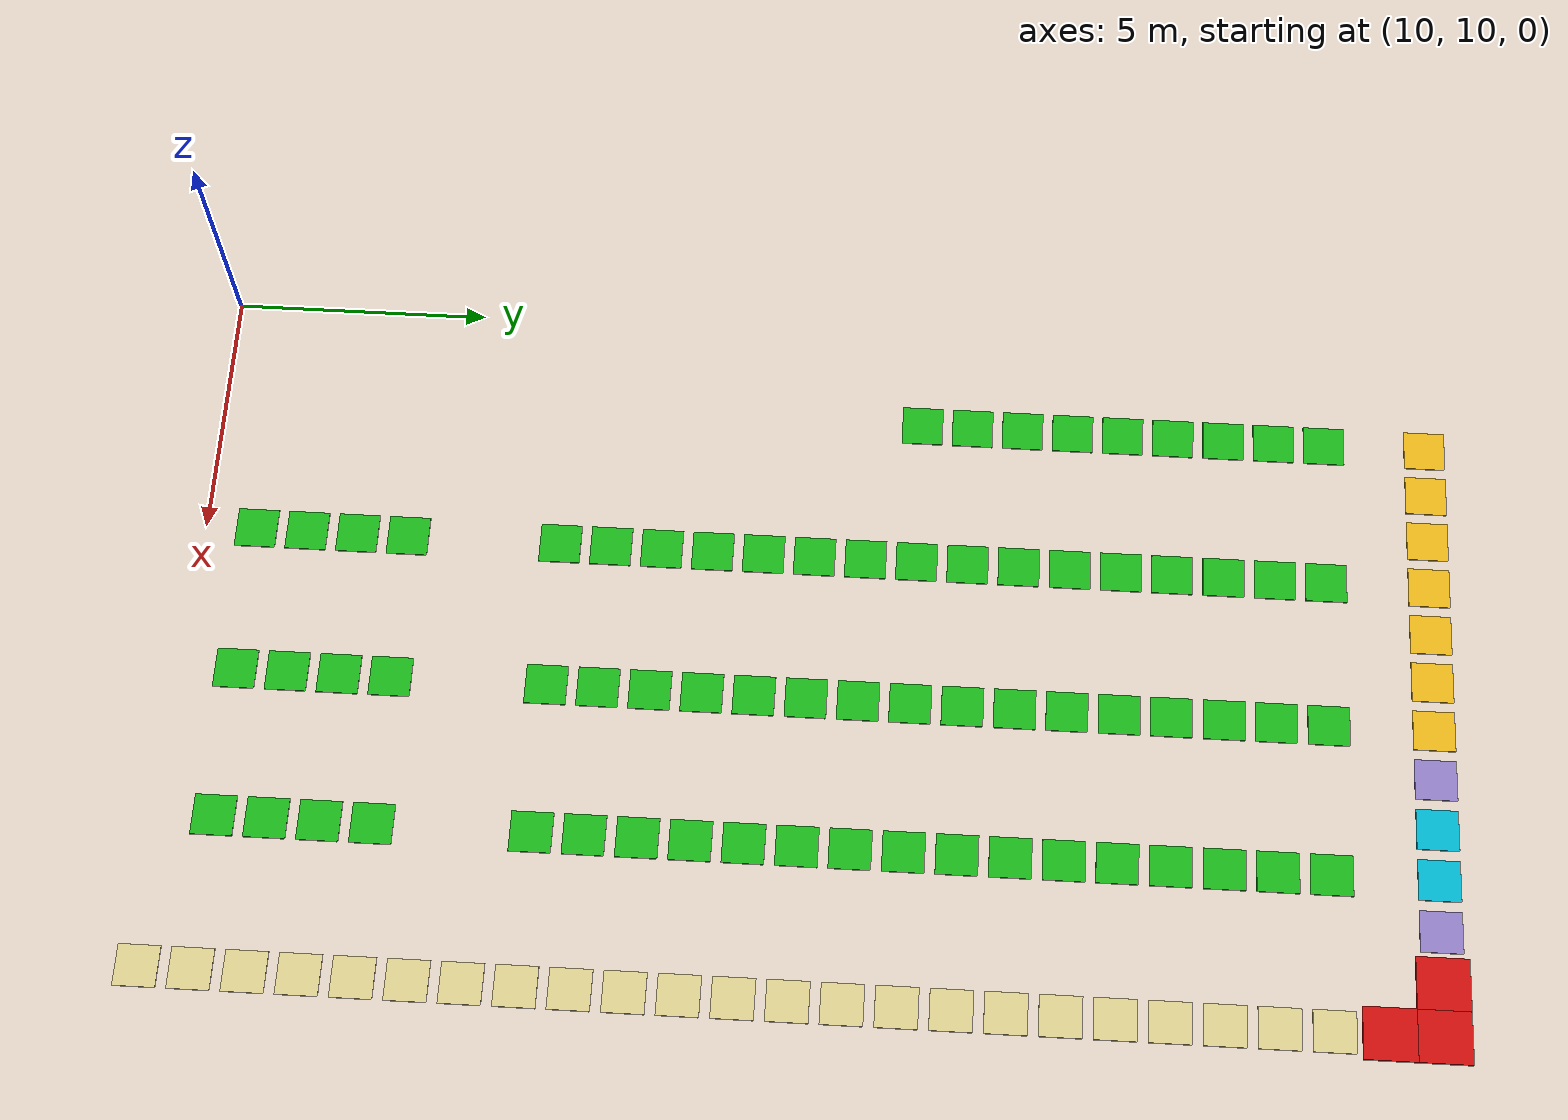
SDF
<sdf version="1.10">
 <world name="my_map_60">
  <model name="blocked_0007">
   <static>true</static>
   <pose>23.0
        34.0
        0.045
        0 0 0</pose>
   <link name="link">
    <visual name="visual">
     <geometry><box><size>1.0
                1.0
                0.05</size></box></geometry>
     <material><ambient>0.8 0.05 0.05 1</ambient><diffuse>0.8 0.05 0.05 1</diffuse></material>
    </visual>
   </link>
  </model>
  <model name="blocked_0010">
   <static>true</static>
   <pose>24.0
        33.0
        0.045
        0 0 0</pose>
   <link name="link">
    <visual name="visual">
     <geometry><box><size>1.0
                1.0
                0.05</size></box></geometry>
     <material><ambient>0.8 0.05 0.05 1</ambient><diffuse>0.8 0.05 0.05 1</diffuse></material>
    </visual>
   </link>
  </model>
  <model name="blocked_0011">
   <static>true</static>
   <pose>24.0
        34.0
        0.045
        0 0 0</pose>
   <link name="link">
    <visual name="visual">
     <geometry><box><size>1.0
                1.0
                0.05</size></box></geometry>
     <material><ambient>0.8 0.05 0.05 1</ambient><diffuse>0.8 0.05 0.05 1</diffuse></material>
    </visual>
   </link>
  </model>
  <model name="dropoff_006">
   <static>true</static>
   <pose>12.0
        34.0
        0.02
        0 0 0</pose>
   <link name="link">
    <visual name="visual">
     <geometry><box><size>0.8
                0.8
                0.02</size></box></geometry>
     <material><ambient>0.90 0.70 0.10 1</ambient><diffuse>0.90 0.70 0.10 1</diffuse></material>
    </visual>
   </link>
  </model>
  <model name="dropoff_007">
   <static>true</static>
   <pose>13.0
        34.0
        0.02
        0 0 0</pose>
   <link name="link">
    <visual name="visual">
     <geometry><box><size>0.8
                0.8
                0.02</size></box></geometry>
     <material><ambient>0.90 0.70 0.10 1</ambient><diffuse>0.90 0.70 0.10 1</diffuse></material>
    </visual>
   </link>
  </model>
  <model name="dropoff_008">
   <static>true</static>
   <pose>14.0
        34.0
        0.02
        0 0 0</pose>
   <link name="link">
    <visual name="visual">
     <geometry><box><size>0.8
                0.8
                0.02</size></box></geometry>
     <material><ambient>0.90 0.70 0.10 1</ambient><diffuse>0.90 0.70 0.10 1</diffuse></material>
    </visual>
   </link>
  </model>
  <model name="dropoff_009">
   <static>true</static>
   <pose>15.0
        34.0
        0.02
        0 0 0</pose>
   <link name="link">
    <visual name="visual">
     <geometry><box><size>0.8
                0.8
                0.02</size></box></geometry>
     <material><ambient>0.90 0.70 0.10 1</ambient><diffuse>0.90 0.70 0.10 1</diffuse></material>
    </visual>
   </link>
  </model>
  <model name="dropoff_010">
   <static>true</static>
   <pose>16.0
        34.0
        0.02
        0 0 0</pose>
   <link name="link">
    <visual name="visual">
     <geometry><box><size>0.8
                0.8
                0.02</size></box></geometry>
     <material><ambient>0.90 0.70 0.10 1</ambient><diffuse>0.90 0.70 0.10 1</diffuse></material>
    </visual>
   </link>
  </model>
  <model name="dropoff_011">
   <static>true</static>
   <pose>17.0
        34.0
        0.02
        0 0 0</pose>
   <link name="link">
    <visual name="visual">
     <geometry><box><size>0.8
                0.8
                0.02</size></box></geometry>
     <material><ambient>0.90 0.70 0.10 1</ambient><diffuse>0.90 0.70 0.10 1</diffuse></material>
    </visual>
   </link>
  </model>
  <model name="dropoff_012">
   <static>true</static>
   <pose>18.0
        34.0
        0.02
        0 0 0</pose>
   <link name="link">
    <visual name="visual">
     <geometry><box><size>0.8
                0.8
                0.02</size></box></geometry>
     <material><ambient>0.90 0.70 0.10 1</ambient><diffuse>0.90 0.70 0.10 1</diffuse></material>
    </visual>
   </link>
  </model>
  <model name="charge_queue_002">
   <static>true</static>
   <pose>19.0
        34.0
        0.02
        0 0 0</pose>
   <link name="link">
    <visual name="visual">
     <geometry><box><size>0.8
                0.8
                0.02</size></box></geometry>
     <material><ambient>0.56 0.49 0.76 1</ambient><diffuse>0.56 0.49 0.76 1</diffuse></material>
    </visual>
   </link>
  </model>
  <model name="charging_005">
   <static>true</static>
   <pose>20.0
        34.0
        0.02
        0 0 0</pose>
   <link name="link">
    <visual name="visual">
     <geometry><box><size>0.8
                0.8
                0.02</size></box></geometry>
     <material><ambient>0.00 0.70 0.80 1</ambient><diffuse>0.00 0.70 0.80 1</diffuse></material>
    </visual>
   </link>
  </model>
  <model name="charging_006">
   <static>true</static>
   <pose>21.0
        34.0
        0.02
        0 0 0</pose>
   <link name="link">
    <visual name="visual">
     <geometry><box><size>0.8
                0.8
                0.02</size></box></geometry>
     <material><ambient>0.00 0.70 0.80 1</ambient><diffuse>0.00 0.70 0.80 1</diffuse></material>
    </visual>
   </link>
  </model>
  <model name="charge_queue_003">
   <static>true</static>
   <pose>22.0
        34.0
        0.02
        0 0 0</pose>
   <link name="link">
    <visual name="visual">
     <geometry><box><size>0.8
                0.8
                0.02</size></box></geometry>
     <material><ambient>0.56 0.49 0.76 1</ambient><diffuse>0.56 0.49 0.76 1</diffuse></material>
    </visual>
   </link>
  </model>
  <model name="shelf_004">
   <static>true</static>
   <pose>12.0
        32.0
        0.02
        0 0 0</pose>
   <link name="link">
    <visual name="visual">
     <geometry><box><size>0.8
                0.8
                0.02</size></box></geometry>
     <material><ambient>0.10 0.70 0.10 1</ambient><diffuse>0.10 0.70 0.10 1</diffuse></material>
    </visual>
   </link>
  </model>
  <model name="shelf_005">
   <static>true</static>
   <pose>15.0
        32.0
        0.02
        0 0 0</pose>
   <link name="link">
    <visual name="visual">
     <geometry><box><size>0.8
                0.8
                0.02</size></box></geometry>
     <material><ambient>0.10 0.70 0.10 1</ambient><diffuse>0.10 0.70 0.10 1</diffuse></material>
    </visual>
   </link>
  </model>
  <model name="shelf_006">
   <static>true</static>
   <pose>18.0
        32.0
        0.02
        0 0 0</pose>
   <link name="link">
    <visual name="visual">
     <geometry><box><size>0.8
                0.8
                0.02</size></box></geometry>
     <material><ambient>0.10 0.70 0.10 1</ambient><diffuse>0.10 0.70 0.10 1</diffuse></material>
    </visual>
   </link>
  </model>
  <model name="shelf_007">
   <static>true</static>
   <pose>21.0
        32.0
        0.02
        0 0 0</pose>
   <link name="link">
    <visual name="visual">
     <geometry><box><size>0.8
                0.8
                0.02</size></box></geometry>
     <material><ambient>0.10 0.70 0.10 1</ambient><diffuse>0.10 0.70 0.10 1</diffuse></material>
    </visual>
   </link>
  </model>
  <model name="staging_002">
   <static>true</static>
   <pose>24.0
        32.0
        0.02
        0 0 0</pose>
   <link name="link">
    <visual name="visual">
     <geometry><box><size>0.8
                0.8
                0.02</size></box></geometry>
     <material><ambient>0.85 0.80 0.55 1</ambient><diffuse>0.85 0.80 0.55 1</diffuse></material>
    </visual>
   </link>
  </model>
  <model name="shelf_011">
   <static>true</static>
   <pose>12.0
        31.0
        0.02
        0 0 0</pose>
   <link name="link">
    <visual name="visual">
     <geometry><box><size>0.8
                0.8
                0.02</size></box></geometry>
     <material><ambient>0.10 0.70 0.10 1</ambient><diffuse>0.10 0.70 0.10 1</diffuse></material>
    </visual>
   </link>
  </model>
  <model name="shelf_012">
   <static>true</static>
   <pose>15.0
        31.0
        0.02
        0 0 0</pose>
   <link name="link">
    <visual name="visual">
     <geometry><box><size>0.8
                0.8
                0.02</size></box></geometry>
     <material><ambient>0.10 0.70 0.10 1</ambient><diffuse>0.10 0.70 0.10 1</diffuse></material>
    </visual>
   </link>
  </model>
  <model name="shelf_013">
   <static>true</static>
   <pose>18.0
        31.0
        0.02
        0 0 0</pose>
   <link name="link">
    <visual name="visual">
     <geometry><box><size>0.8
                0.8
                0.02</size></box></geometry>
     <material><ambient>0.10 0.70 0.10 1</ambient><diffuse>0.10 0.70 0.10 1</diffuse></material>
    </visual>
   </link>
  </model>
  <model name="shelf_014">
   <static>true</static>
   <pose>21.0
        31.0
        0.02
        0 0 0</pose>
   <link name="link">
    <visual name="visual">
     <geometry><box><size>0.8
                0.8
                0.02</size></box></geometry>
     <material><ambient>0.10 0.70 0.10 1</ambient><diffuse>0.10 0.70 0.10 1</diffuse></material>
    </visual>
   </link>
  </model>
  <model name="staging_004">
   <static>true</static>
   <pose>24.0
        31.0
        0.02
        0 0 0</pose>
   <link name="link">
    <visual name="visual">
     <geometry><box><size>0.8
                0.8
                0.02</size></box></geometry>
     <material><ambient>0.85 0.80 0.55 1</ambient><diffuse>0.85 0.80 0.55 1</diffuse></material>
    </visual>
   </link>
  </model>
  <model name="shelf_018">
   <static>true</static>
   <pose>12.0
        30.0
        0.02
        0 0 0</pose>
   <link name="link">
    <visual name="visual">
     <geometry><box><size>0.8
                0.8
                0.02</size></box></geometry>
     <material><ambient>0.10 0.70 0.10 1</ambient><diffuse>0.10 0.70 0.10 1</diffuse></material>
    </visual>
   </link>
  </model>
  <model name="shelf_019">
   <static>true</static>
   <pose>15.0
        30.0
        0.02
        0 0 0</pose>
   <link name="link">
    <visual name="visual">
     <geometry><box><size>0.8
                0.8
                0.02</size></box></geometry>
     <material><ambient>0.10 0.70 0.10 1</ambient><diffuse>0.10 0.70 0.10 1</diffuse></material>
    </visual>
   </link>
  </model>
  <model name="shelf_020">
   <static>true</static>
   <pose>18.0
        30.0
        0.02
        0 0 0</pose>
   <link name="link">
    <visual name="visual">
     <geometry><box><size>0.8
                0.8
                0.02</size></box></geometry>
     <material><ambient>0.10 0.70 0.10 1</ambient><diffuse>0.10 0.70 0.10 1</diffuse></material>
    </visual>
   </link>
  </model>
  <model name="shelf_021">
   <static>true</static>
   <pose>21.0
        30.0
        0.02
        0 0 0</pose>
   <link name="link">
    <visual name="visual">
     <geometry><box><size>0.8
                0.8
                0.02</size></box></geometry>
     <material><ambient>0.10 0.70 0.10 1</ambient><diffuse>0.10 0.70 0.10 1</diffuse></material>
    </visual>
   </link>
  </model>
  <model name="staging_006">
   <static>true</static>
   <pose>24.0
        30.0
        0.02
        0 0 0</pose>
   <link name="link">
    <visual name="visual">
     <geometry><box><size>0.8
                0.8
                0.02</size></box></geometry>
     <material><ambient>0.85 0.80 0.55 1</ambient><diffuse>0.85 0.80 0.55 1</diffuse></material>
    </visual>
   </link>
  </model>
  <model name="shelf_025">
   <static>true</static>
   <pose>12.0
        29.0
        0.02
        0 0 0</pose>
   <link name="link">
    <visual name="visual">
     <geometry><box><size>0.8
                0.8
                0.02</size></box></geometry>
     <material><ambient>0.10 0.70 0.10 1</ambient><diffuse>0.10 0.70 0.10 1</diffuse></material>
    </visual>
   </link>
  </model>
  <model name="shelf_026">
   <static>true</static>
   <pose>15.0
        29.0
        0.02
        0 0 0</pose>
   <link name="link">
    <visual name="visual">
     <geometry><box><size>0.8
                0.8
                0.02</size></box></geometry>
     <material><ambient>0.10 0.70 0.10 1</ambient><diffuse>0.10 0.70 0.10 1</diffuse></material>
    </visual>
   </link>
  </model>
  <model name="shelf_027">
   <static>true</static>
   <pose>18.0
        29.0
        0.02
        0 0 0</pose>
   <link name="link">
    <visual name="visual">
     <geometry><box><size>0.8
                0.8
                0.02</size></box></geometry>
     <material><ambient>0.10 0.70 0.10 1</ambient><diffuse>0.10 0.70 0.10 1</diffuse></material>
    </visual>
   </link>
  </model>
  <model name="shelf_028">
   <static>true</static>
   <pose>21.0
        29.0
        0.02
        0 0 0</pose>
   <link name="link">
    <visual name="visual">
     <geometry><box><size>0.8
                0.8
                0.02</size></box></geometry>
     <material><ambient>0.10 0.70 0.10 1</ambient><diffuse>0.10 0.70 0.10 1</diffuse></material>
    </visual>
   </link>
  </model>
  <model name="staging_008">
   <static>true</static>
   <pose>24.0
        29.0
        0.02
        0 0 0</pose>
   <link name="link">
    <visual name="visual">
     <geometry><box><size>0.8
                0.8
                0.02</size></box></geometry>
     <material><ambient>0.85 0.80 0.55 1</ambient><diffuse>0.85 0.80 0.55 1</diffuse></material>
    </visual>
   </link>
  </model>
  <model name="shelf_032">
   <static>true</static>
   <pose>12.0
        28.0
        0.02
        0 0 0</pose>
   <link name="link">
    <visual name="visual">
     <geometry><box><size>0.8
                0.8
                0.02</size></box></geometry>
     <material><ambient>0.10 0.70 0.10 1</ambient><diffuse>0.10 0.70 0.10 1</diffuse></material>
    </visual>
   </link>
  </model>
  <model name="shelf_033">
   <static>true</static>
   <pose>15.0
        28.0
        0.02
        0 0 0</pose>
   <link name="link">
    <visual name="visual">
     <geometry><box><size>0.8
                0.8
                0.02</size></box></geometry>
     <material><ambient>0.10 0.70 0.10 1</ambient><diffuse>0.10 0.70 0.10 1</diffuse></material>
    </visual>
   </link>
  </model>
  <model name="shelf_034">
   <static>true</static>
   <pose>18.0
        28.0
        0.02
        0 0 0</pose>
   <link name="link">
    <visual name="visual">
     <geometry><box><size>0.8
                0.8
                0.02</size></box></geometry>
     <material><ambient>0.10 0.70 0.10 1</ambient><diffuse>0.10 0.70 0.10 1</diffuse></material>
    </visual>
   </link>
  </model>
  <model name="shelf_035">
   <static>true</static>
   <pose>21.0
        28.0
        0.02
        0 0 0</pose>
   <link name="link">
    <visual name="visual">
     <geometry><box><size>0.8
                0.8
                0.02</size></box></geometry>
     <material><ambient>0.10 0.70 0.10 1</ambient><diffuse>0.10 0.70 0.10 1</diffuse></material>
    </visual>
   </link>
  </model>
  <model name="staging_010">
   <static>true</static>
   <pose>24.0
        28.0
        0.02
        0 0 0</pose>
   <link name="link">
    <visual name="visual">
     <geometry><box><size>0.8
                0.8
                0.02</size></box></geometry>
     <material><ambient>0.85 0.80 0.55 1</ambient><diffuse>0.85 0.80 0.55 1</diffuse></material>
    </visual>
   </link>
  </model>
  <model name="shelf_039">
   <static>true</static>
   <pose>12.0
        27.0
        0.02
        0 0 0</pose>
   <link name="link">
    <visual name="visual">
     <geometry><box><size>0.8
                0.8
                0.02</size></box></geometry>
     <material><ambient>0.10 0.70 0.10 1</ambient><diffuse>0.10 0.70 0.10 1</diffuse></material>
    </visual>
   </link>
  </model>
  <model name="shelf_040">
   <static>true</static>
   <pose>15.0
        27.0
        0.02
        0 0 0</pose>
   <link name="link">
    <visual name="visual">
     <geometry><box><size>0.8
                0.8
                0.02</size></box></geometry>
     <material><ambient>0.10 0.70 0.10 1</ambient><diffuse>0.10 0.70 0.10 1</diffuse></material>
    </visual>
   </link>
  </model>
  <model name="shelf_041">
   <static>true</static>
   <pose>18.0
        27.0
        0.02
        0 0 0</pose>
   <link name="link">
    <visual name="visual">
     <geometry><box><size>0.8
                0.8
                0.02</size></box></geometry>
     <material><ambient>0.10 0.70 0.10 1</ambient><diffuse>0.10 0.70 0.10 1</diffuse></material>
    </visual>
   </link>
  </model>
  <model name="shelf_042">
   <static>true</static>
   <pose>21.0
        27.0
        0.02
        0 0 0</pose>
   <link name="link">
    <visual name="visual">
     <geometry><box><size>0.8
                0.8
                0.02</size></box></geometry>
     <material><ambient>0.10 0.70 0.10 1</ambient><diffuse>0.10 0.70 0.10 1</diffuse></material>
    </visual>
   </link>
  </model>
  <model name="staging_012">
   <static>true</static>
   <pose>24.0
        27.0
        0.02
        0 0 0</pose>
   <link name="link">
    <visual name="visual">
     <geometry><box><size>0.8
                0.8
                0.02</size></box></geometry>
     <material><ambient>0.85 0.80 0.55 1</ambient><diffuse>0.85 0.80 0.55 1</diffuse></material>
    </visual>
   </link>
  </model>
  <model name="shelf_046">
   <static>true</static>
   <pose>12.0
        26.0
        0.02
        0 0 0</pose>
   <link name="link">
    <visual name="visual">
     <geometry><box><size>0.8
                0.8
                0.02</size></box></geometry>
     <material><ambient>0.10 0.70 0.10 1</ambient><diffuse>0.10 0.70 0.10 1</diffuse></material>
    </visual>
   </link>
  </model>
  <model name="shelf_047">
   <static>true</static>
   <pose>15.0
        26.0
        0.02
        0 0 0</pose>
   <link name="link">
    <visual name="visual">
     <geometry><box><size>0.8
                0.8
                0.02</size></box></geometry>
     <material><ambient>0.10 0.70 0.10 1</ambient><diffuse>0.10 0.70 0.10 1</diffuse></material>
    </visual>
   </link>
  </model>
  <model name="shelf_048">
   <static>true</static>
   <pose>18.0
        26.0
        0.02
        0 0 0</pose>
   <link name="link">
    <visual name="visual">
     <geometry><box><size>0.8
                0.8
                0.02</size></box></geometry>
     <material><ambient>0.10 0.70 0.10 1</ambient><diffuse>0.10 0.70 0.10 1</diffuse></material>
    </visual>
   </link>
  </model>
  <model name="shelf_049">
   <static>true</static>
   <pose>21.0
        26.0
        0.02
        0 0 0</pose>
   <link name="link">
    <visual name="visual">
     <geometry><box><size>0.8
                0.8
                0.02</size></box></geometry>
     <material><ambient>0.10 0.70 0.10 1</ambient><diffuse>0.10 0.70 0.10 1</diffuse></material>
    </visual>
   </link>
  </model>
  <model name="staging_014">
   <static>true</static>
   <pose>24.0
        26.0
        0.02
        0 0 0</pose>
   <link name="link">
    <visual name="visual">
     <geometry><box><size>0.8
                0.8
                0.02</size></box></geometry>
     <material><ambient>0.85 0.80 0.55 1</ambient><diffuse>0.85 0.80 0.55 1</diffuse></material>
    </visual>
   </link>
  </model>
  <model name="shelf_053">
   <static>true</static>
   <pose>12.0
        25.0
        0.02
        0 0 0</pose>
   <link name="link">
    <visual name="visual">
     <geometry><box><size>0.8
                0.8
                0.02</size></box></geometry>
     <material><ambient>0.10 0.70 0.10 1</ambient><diffuse>0.10 0.70 0.10 1</diffuse></material>
    </visual>
   </link>
  </model>
  <model name="shelf_054">
   <static>true</static>
   <pose>15.0
        25.0
        0.02
        0 0 0</pose>
   <link name="link">
    <visual name="visual">
     <geometry><box><size>0.8
                0.8
                0.02</size></box></geometry>
     <material><ambient>0.10 0.70 0.10 1</ambient><diffuse>0.10 0.70 0.10 1</diffuse></material>
    </visual>
   </link>
  </model>
  <model name="shelf_055">
   <static>true</static>
   <pose>18.0
        25.0
        0.02
        0 0 0</pose>
   <link name="link">
    <visual name="visual">
     <geometry><box><size>0.8
                0.8
                0.02</size></box></geometry>
     <material><ambient>0.10 0.70 0.10 1</ambient><diffuse>0.10 0.70 0.10 1</diffuse></material>
    </visual>
   </link>
  </model>
  <model name="shelf_056">
   <static>true</static>
   <pose>21.0
        25.0
        0.02
        0 0 0</pose>
   <link name="link">
    <visual name="visual">
     <geometry><box><size>0.8
                0.8
                0.02</size></box></geometry>
     <material><ambient>0.10 0.70 0.10 1</ambient><diffuse>0.10 0.70 0.10 1</diffuse></material>
    </visual>
   </link>
  </model>
  <model name="staging_016">
   <static>true</static>
   <pose>24.0
        25.0
        0.02
        0 0 0</pose>
   <link name="link">
    <visual name="visual">
     <geometry><box><size>0.8
                0.8
                0.02</size></box></geometry>
     <material><ambient>0.85 0.80 0.55 1</ambient><diffuse>0.85 0.80 0.55 1</diffuse></material>
    </visual>
   </link>
  </model>
  <model name="shelf_060">
   <static>true</static>
   <pose>12.0
        24.0
        0.02
        0 0 0</pose>
   <link name="link">
    <visual name="visual">
     <geometry><box><size>0.8
                0.8
                0.02</size></box></geometry>
     <material><ambient>0.10 0.70 0.10 1</ambient><diffuse>0.10 0.70 0.10 1</diffuse></material>
    </visual>
   </link>
  </model>
  <model name="shelf_061">
   <static>true</static>
   <pose>15.0
        24.0
        0.02
        0 0 0</pose>
   <link name="link">
    <visual name="visual">
     <geometry><box><size>0.8
                0.8
                0.02</size></box></geometry>
     <material><ambient>0.10 0.70 0.10 1</ambient><diffuse>0.10 0.70 0.10 1</diffuse></material>
    </visual>
   </link>
  </model>
  <model name="shelf_062">
   <static>true</static>
   <pose>18.0
        24.0
        0.02
        0 0 0</pose>
   <link name="link">
    <visual name="visual">
     <geometry><box><size>0.8
                0.8
                0.02</size></box></geometry>
     <material><ambient>0.10 0.70 0.10 1</ambient><diffuse>0.10 0.70 0.10 1</diffuse></material>
    </visual>
   </link>
  </model>
  <model name="shelf_063">
   <static>true</static>
   <pose>21.0
        24.0
        0.02
        0 0 0</pose>
   <link name="link">
    <visual name="visual">
     <geometry><box><size>0.8
                0.8
                0.02</size></box></geometry>
     <material><ambient>0.10 0.70 0.10 1</ambient><diffuse>0.10 0.70 0.10 1</diffuse></material>
    </visual>
   </link>
  </model>
  <model name="staging_018">
   <static>true</static>
   <pose>24.0
        24.0
        0.02
        0 0 0</pose>
   <link name="link">
    <visual name="visual">
     <geometry><box><size>0.8
                0.8
                0.02</size></box></geometry>
     <material><ambient>0.85 0.80 0.55 1</ambient><diffuse>0.85 0.80 0.55 1</diffuse></material>
    </visual>
   </link>
  </model>
  <model name="shelf_068">
   <static>true</static>
   <pose>15.0
        23.0
        0.02
        0 0 0</pose>
   <link name="link">
    <visual name="visual">
     <geometry><box><size>0.8
                0.8
                0.02</size></box></geometry>
     <material><ambient>0.10 0.70 0.10 1</ambient><diffuse>0.10 0.70 0.10 1</diffuse></material>
    </visual>
   </link>
  </model>
  <model name="shelf_069">
   <static>true</static>
   <pose>18.0
        23.0
        0.02
        0 0 0</pose>
   <link name="link">
    <visual name="visual">
     <geometry><box><size>0.8
                0.8
                0.02</size></box></geometry>
     <material><ambient>0.10 0.70 0.10 1</ambient><diffuse>0.10 0.70 0.10 1</diffuse></material>
    </visual>
   </link>
  </model>
  <model name="shelf_070">
   <static>true</static>
   <pose>21.0
        23.0
        0.02
        0 0 0</pose>
   <link name="link">
    <visual name="visual">
     <geometry><box><size>0.8
                0.8
                0.02</size></box></geometry>
     <material><ambient>0.10 0.70 0.10 1</ambient><diffuse>0.10 0.70 0.10 1</diffuse></material>
    </visual>
   </link>
  </model>
  <model name="staging_020">
   <static>true</static>
   <pose>24.0
        23.0
        0.02
        0 0 0</pose>
   <link name="link">
    <visual name="visual">
     <geometry><box><size>0.8
                0.8
                0.02</size></box></geometry>
     <material><ambient>0.85 0.80 0.55 1</ambient><diffuse>0.85 0.80 0.55 1</diffuse></material>
    </visual>
   </link>
  </model>
  <model name="shelf_075">
   <static>true</static>
   <pose>15.0
        22.0
        0.02
        0 0 0</pose>
   <link name="link">
    <visual name="visual">
     <geometry><box><size>0.8
                0.8
                0.02</size></box></geometry>
     <material><ambient>0.10 0.70 0.10 1</ambient><diffuse>0.10 0.70 0.10 1</diffuse></material>
    </visual>
   </link>
  </model>
  <model name="shelf_076">
   <static>true</static>
   <pose>18.0
        22.0
        0.02
        0 0 0</pose>
   <link name="link">
    <visual name="visual">
     <geometry><box><size>0.8
                0.8
                0.02</size></box></geometry>
     <material><ambient>0.10 0.70 0.10 1</ambient><diffuse>0.10 0.70 0.10 1</diffuse></material>
    </visual>
   </link>
  </model>
  <model name="shelf_077">
   <static>true</static>
   <pose>21.0
        22.0
        0.02
        0 0 0</pose>
   <link name="link">
    <visual name="visual">
     <geometry><box><size>0.8
                0.8
                0.02</size></box></geometry>
     <material><ambient>0.10 0.70 0.10 1</ambient><diffuse>0.10 0.70 0.10 1</diffuse></material>
    </visual>
   </link>
  </model>
  <model name="staging_022">
   <static>true</static>
   <pose>24.0
        22.0
        0.02
        0 0 0</pose>
   <link name="link">
    <visual name="visual">
     <geometry><box><size>0.8
                0.8
                0.02</size></box></geometry>
     <material><ambient>0.85 0.80 0.55 1</ambient><diffuse>0.85 0.80 0.55 1</diffuse></material>
    </visual>
   </link>
  </model>
  <model name="shelf_082">
   <static>true</static>
   <pose>15.0
        21.0
        0.02
        0 0 0</pose>
   <link name="link">
    <visual name="visual">
     <geometry><box><size>0.8
                0.8
                0.02</size></box></geometry>
     <material><ambient>0.10 0.70 0.10 1</ambient><diffuse>0.10 0.70 0.10 1</diffuse></material>
    </visual>
   </link>
  </model>
  <model name="shelf_083">
   <static>true</static>
   <pose>18.0
        21.0
        0.02
        0 0 0</pose>
   <link name="link">
    <visual name="visual">
     <geometry><box><size>0.8
                0.8
                0.02</size></box></geometry>
     <material><ambient>0.10 0.70 0.10 1</ambient><diffuse>0.10 0.70 0.10 1</diffuse></material>
    </visual>
   </link>
  </model>
  <model name="shelf_084">
   <static>true</static>
   <pose>21.0
        21.0
        0.02
        0 0 0</pose>
   <link name="link">
    <visual name="visual">
     <geometry><box><size>0.8
                0.8
                0.02</size></box></geometry>
     <material><ambient>0.10 0.70 0.10 1</ambient><diffuse>0.10 0.70 0.10 1</diffuse></material>
    </visual>
   </link>
  </model>
  <model name="staging_024">
   <static>true</static>
   <pose>24.0
        21.0
        0.02
        0 0 0</pose>
   <link name="link">
    <visual name="visual">
     <geometry><box><size>0.8
                0.8
                0.02</size></box></geometry>
     <material><ambient>0.85 0.80 0.55 1</ambient><diffuse>0.85 0.80 0.55 1</diffuse></material>
    </visual>
   </link>
  </model>
  <model name="shelf_089">
   <static>true</static>
   <pose>15.0
        20.0
        0.02
        0 0 0</pose>
   <link name="link">
    <visual name="visual">
     <geometry><box><size>0.8
                0.8
                0.02</size></box></geometry>
     <material><ambient>0.10 0.70 0.10 1</ambient><diffuse>0.10 0.70 0.10 1</diffuse></material>
    </visual>
   </link>
  </model>
  <model name="shelf_090">
   <static>true</static>
   <pose>18.0
        20.0
        0.02
        0 0 0</pose>
   <link name="link">
    <visual name="visual">
     <geometry><box><size>0.8
                0.8
                0.02</size></box></geometry>
     <material><ambient>0.10 0.70 0.10 1</ambient><diffuse>0.10 0.70 0.10 1</diffuse></material>
    </visual>
   </link>
  </model>
  <model name="shelf_091">
   <static>true</static>
   <pose>21.0
        20.0
        0.02
        0 0 0</pose>
   <link name="link">
    <visual name="visual">
     <geometry><box><size>0.8
                0.8
                0.02</size></box></geometry>
     <material><ambient>0.10 0.70 0.10 1</ambient><diffuse>0.10 0.70 0.10 1</diffuse></material>
    </visual>
   </link>
  </model>
  <model name="staging_026">
   <static>true</static>
   <pose>24.0
        20.0
        0.02
        0 0 0</pose>
   <link name="link">
    <visual name="visual">
     <geometry><box><size>0.8
                0.8
                0.02</size></box></geometry>
     <material><ambient>0.85 0.80 0.55 1</ambient><diffuse>0.85 0.80 0.55 1</diffuse></material>
    </visual>
   </link>
  </model>
  <model name="shelf_096">
   <static>true</static>
   <pose>15.0
        19.0
        0.02
        0 0 0</pose>
   <link name="link">
    <visual name="visual">
     <geometry><box><size>0.8
                0.8
                0.02</size></box></geometry>
     <material><ambient>0.10 0.70 0.10 1</ambient><diffuse>0.10 0.70 0.10 1</diffuse></material>
    </visual>
   </link>
  </model>
  <model name="shelf_097">
   <static>true</static>
   <pose>18.0
        19.0
        0.02
        0 0 0</pose>
   <link name="link">
    <visual name="visual">
     <geometry><box><size>0.8
                0.8
                0.02</size></box></geometry>
     <material><ambient>0.10 0.70 0.10 1</ambient><diffuse>0.10 0.70 0.10 1</diffuse></material>
    </visual>
   </link>
  </model>
  <model name="shelf_098">
   <static>true</static>
   <pose>21.0
        19.0
        0.02
        0 0 0</pose>
   <link name="link">
    <visual name="visual">
     <geometry><box><size>0.8
                0.8
                0.02</size></box></geometry>
     <material><ambient>0.10 0.70 0.10 1</ambient><diffuse>0.10 0.70 0.10 1</diffuse></material>
    </visual>
   </link>
  </model>
  <model name="staging_028">
   <static>true</static>
   <pose>24.0
        19.0
        0.02
        0 0 0</pose>
   <link name="link">
    <visual name="visual">
     <geometry><box><size>0.8
                0.8
                0.02</size></box></geometry>
     <material><ambient>0.85 0.80 0.55 1</ambient><diffuse>0.85 0.80 0.55 1</diffuse></material>
    </visual>
   </link>
  </model>
  <model name="shelf_103">
   <static>true</static>
   <pose>15.0
        18.0
        0.02
        0 0 0</pose>
   <link name="link">
    <visual name="visual">
     <geometry><box><size>0.8
                0.8
                0.02</size></box></geometry>
     <material><ambient>0.10 0.70 0.10 1</ambient><diffuse>0.10 0.70 0.10 1</diffuse></material>
    </visual>
   </link>
  </model>
  <model name="shelf_104">
   <static>true</static>
   <pose>18.0
        18.0
        0.02
        0 0 0</pose>
   <link name="link">
    <visual name="visual">
     <geometry><box><size>0.8
                0.8
                0.02</size></box></geometry>
     <material><ambient>0.10 0.70 0.10 1</ambient><diffuse>0.10 0.70 0.10 1</diffuse></material>
    </visual>
   </link>
  </model>
  <model name="shelf_105">
   <static>true</static>
   <pose>21.0
        18.0
        0.02
        0 0 0</pose>
   <link name="link">
    <visual name="visual">
     <geometry><box><size>0.8
                0.8
                0.02</size></box></geometry>
     <material><ambient>0.10 0.70 0.10 1</ambient><diffuse>0.10 0.70 0.10 1</diffuse></material>
    </visual>
   </link>
  </model>
  <model name="staging_030">
   <static>true</static>
   <pose>24.0
        18.0
        0.02
        0 0 0</pose>
   <link name="link">
    <visual name="visual">
     <geometry><box><size>0.8
                0.8
                0.02</size></box></geometry>
     <material><ambient>0.85 0.80 0.55 1</ambient><diffuse>0.85 0.80 0.55 1</diffuse></material>
    </visual>
   </link>
  </model>
  <model name="shelf_110">
   <static>true</static>
   <pose>15.0
        17.0
        0.02
        0 0 0</pose>
   <link name="link">
    <visual name="visual">
     <geometry><box><size>0.8
                0.8
                0.02</size></box></geometry>
     <material><ambient>0.10 0.70 0.10 1</ambient><diffuse>0.10 0.70 0.10 1</diffuse></material>
    </visual>
   </link>
  </model>
  <model name="shelf_111">
   <static>true</static>
   <pose>18.0
        17.0
        0.02
        0 0 0</pose>
   <link name="link">
    <visual name="visual">
     <geometry><box><size>0.8
                0.8
                0.02</size></box></geometry>
     <material><ambient>0.10 0.70 0.10 1</ambient><diffuse>0.10 0.70 0.10 1</diffuse></material>
    </visual>
   </link>
  </model>
  <model name="shelf_112">
   <static>true</static>
   <pose>21.0
        17.0
        0.02
        0 0 0</pose>
   <link name="link">
    <visual name="visual">
     <geometry><box><size>0.8
                0.8
                0.02</size></box></geometry>
     <material><ambient>0.10 0.70 0.10 1</ambient><diffuse>0.10 0.70 0.10 1</diffuse></material>
    </visual>
   </link>
  </model>
  <model name="staging_032">
   <static>true</static>
   <pose>24.0
        17.0
        0.02
        0 0 0</pose>
   <link name="link">
    <visual name="visual">
     <geometry><box><size>0.8
                0.8
                0.02</size></box></geometry>
     <material><ambient>0.85 0.80 0.55 1</ambient><diffuse>0.85 0.80 0.55 1</diffuse></material>
    </visual>
   </link>
  </model>
  <model name="staging_034">
   <static>true</static>
   <pose>24.0
        16.0
        0.02
        0 0 0</pose>
   <link name="link">
    <visual name="visual">
     <geometry><box><size>0.8
                0.8
                0.02</size></box></geometry>
     <material><ambient>0.85 0.80 0.55 1</ambient><diffuse>0.85 0.80 0.55 1</diffuse></material>
    </visual>
   </link>
  </model>
  <model name="staging_036">
   <static>true</static>
   <pose>24.0
        15.0
        0.02
        0 0 0</pose>
   <link name="link">
    <visual name="visual">
     <geometry><box><size>0.8
                0.8
                0.02</size></box></geometry>
     <material><ambient>0.85 0.80 0.55 1</ambient><diffuse>0.85 0.80 0.55 1</diffuse></material>
    </visual>
   </link>
  </model>
  <model name="shelf_117">
   <static>true</static>
   <pose>15.0
        14.0
        0.02
        0 0 0</pose>
   <link name="link">
    <visual name="visual">
     <geometry><box><size>0.8
                0.8
                0.02</size></box></geometry>
     <material><ambient>0.10 0.70 0.10 1</ambient><diffuse>0.10 0.70 0.10 1</diffuse></material>
    </visual>
   </link>
  </model>
  <model name="shelf_118">
   <static>true</static>
   <pose>18.0
        14.0
        0.02
        0 0 0</pose>
   <link name="link">
    <visual name="visual">
     <geometry><box><size>0.8
                0.8
                0.02</size></box></geometry>
     <material><ambient>0.10 0.70 0.10 1</ambient><diffuse>0.10 0.70 0.10 1</diffuse></material>
    </visual>
   </link>
  </model>
  <model name="shelf_119">
   <static>true</static>
   <pose>21.0
        14.0
        0.02
        0 0 0</pose>
   <link name="link">
    <visual name="visual">
     <geometry><box><size>0.8
                0.8
                0.02</size></box></geometry>
     <material><ambient>0.10 0.70 0.10 1</ambient><diffuse>0.10 0.70 0.10 1</diffuse></material>
    </visual>
   </link>
  </model>
  <model name="staging_038">
   <static>true</static>
   <pose>24.0
        14.0
        0.02
        0 0 0</pose>
   <link name="link">
    <visual name="visual">
     <geometry><box><size>0.8
                0.8
                0.02</size></box></geometry>
     <material><ambient>0.85 0.80 0.55 1</ambient><diffuse>0.85 0.80 0.55 1</diffuse></material>
    </visual>
   </link>
  </model>
  <model name="shelf_124">
   <static>true</static>
   <pose>15.0
        13.0
        0.02
        0 0 0</pose>
   <link name="link">
    <visual name="visual">
     <geometry><box><size>0.8
                0.8
                0.02</size></box></geometry>
     <material><ambient>0.10 0.70 0.10 1</ambient><diffuse>0.10 0.70 0.10 1</diffuse></material>
    </visual>
   </link>
  </model>
  <model name="shelf_125">
   <static>true</static>
   <pose>18.0
        13.0
        0.02
        0 0 0</pose>
   <link name="link">
    <visual name="visual">
     <geometry><box><size>0.8
                0.8
                0.02</size></box></geometry>
     <material><ambient>0.10 0.70 0.10 1</ambient><diffuse>0.10 0.70 0.10 1</diffuse></material>
    </visual>
   </link>
  </model>
  <model name="shelf_126">
   <static>true</static>
   <pose>21.0
        13.0
        0.02
        0 0 0</pose>
   <link name="link">
    <visual name="visual">
     <geometry><box><size>0.8
                0.8
                0.02</size></box></geometry>
     <material><ambient>0.10 0.70 0.10 1</ambient><diffuse>0.10 0.70 0.10 1</diffuse></material>
    </visual>
   </link>
  </model>
  <model name="staging_040">
   <static>true</static>
   <pose>24.0
        13.0
        0.02
        0 0 0</pose>
   <link name="link">
    <visual name="visual">
     <geometry><box><size>0.8
                0.8
                0.02</size></box></geometry>
     <material><ambient>0.85 0.80 0.55 1</ambient><diffuse>0.85 0.80 0.55 1</diffuse></material>
    </visual>
   </link>
  </model>
  <model name="shelf_131">
   <static>true</static>
   <pose>15.0
        12.0
        0.02
        0 0 0</pose>
   <link name="link">
    <visual name="visual">
     <geometry><box><size>0.8
                0.8
                0.02</size></box></geometry>
     <material><ambient>0.10 0.70 0.10 1</ambient><diffuse>0.10 0.70 0.10 1</diffuse></material>
    </visual>
   </link>
  </model>
  <model name="shelf_132">
   <static>true</static>
   <pose>18.0
        12.0
        0.02
        0 0 0</pose>
   <link name="link">
    <visual name="visual">
     <geometry><box><size>0.8
                0.8
                0.02</size></box></geometry>
     <material><ambient>0.10 0.70 0.10 1</ambient><diffuse>0.10 0.70 0.10 1</diffuse></material>
    </visual>
   </link>
  </model>
  <model name="shelf_133">
   <static>true</static>
   <pose>21.0
        12.0
        0.02
        0 0 0</pose>
   <link name="link">
    <visual name="visual">
     <geometry><box><size>0.8
                0.8
                0.02</size></box></geometry>
     <material><ambient>0.10 0.70 0.10 1</ambient><diffuse>0.10 0.70 0.10 1</diffuse></material>
    </visual>
   </link>
  </model>
  <model name="staging_042">
   <static>true</static>
   <pose>24.0
        12.0
        0.02
        0 0 0</pose>
   <link name="link">
    <visual name="visual">
     <geometry><box><size>0.8
                0.8
                0.02</size></box></geometry>
     <material><ambient>0.85 0.80 0.55 1</ambient><diffuse>0.85 0.80 0.55 1</diffuse></material>
    </visual>
   </link>
  </model>
  <model name="shelf_138">
   <static>true</static>
   <pose>15.0
        11.0
        0.02
        0 0 0</pose>
   <link name="link">
    <visual name="visual">
     <geometry><box><size>0.8
                0.8
                0.02</size></box></geometry>
     <material><ambient>0.10 0.70 0.10 1</ambient><diffuse>0.10 0.70 0.10 1</diffuse></material>
    </visual>
   </link>
  </model>
  <model name="shelf_139">
   <static>true</static>
   <pose>18.0
        11.0
        0.02
        0 0 0</pose>
   <link name="link">
    <visual name="visual">
     <geometry><box><size>0.8
                0.8
                0.02</size></box></geometry>
     <material><ambient>0.10 0.70 0.10 1</ambient><diffuse>0.10 0.70 0.10 1</diffuse></material>
    </visual>
   </link>
  </model>
  <model name="shelf_140">
   <static>true</static>
   <pose>21.0
        11.0
        0.02
        0 0 0</pose>
   <link name="link">
    <visual name="visual">
     <geometry><box><size>0.8
                0.8
                0.02</size></box></geometry>
     <material><ambient>0.10 0.70 0.10 1</ambient><diffuse>0.10 0.70 0.10 1</diffuse></material>
    </visual>
   </link>
  </model>
  <model name="staging_044">
   <static>true</static>
   <pose>24.0
        11.0
        0.02
        0 0 0</pose>
   <link name="link">
    <visual name="visual">
     <geometry><box><size>0.8
                0.8
                0.02</size></box></geometry>
     <material><ambient>0.85 0.80 0.55 1</ambient><diffuse>0.85 0.80 0.55 1</diffuse></material>
    </visual>
   </link>
  </model>
  <model name="staging_046">
   <static>true</static>
   <pose>24.0
        10.0
        0.02
        0 0 0</pose>
   <link name="link">
    <visual name="visual">
     <geometry><box><size>0.8
                0.8
                0.02</size></box></geometry>
     <material><ambient>0.85 0.80 0.55 1</ambient><diffuse>0.85 0.80 0.55 1</diffuse></material>
    </visual>
   </link>
  </model>
 </world>
</sdf>
